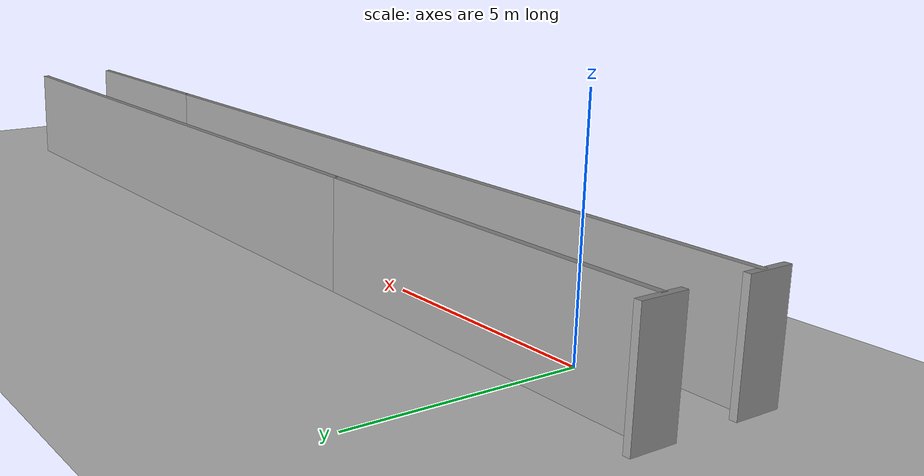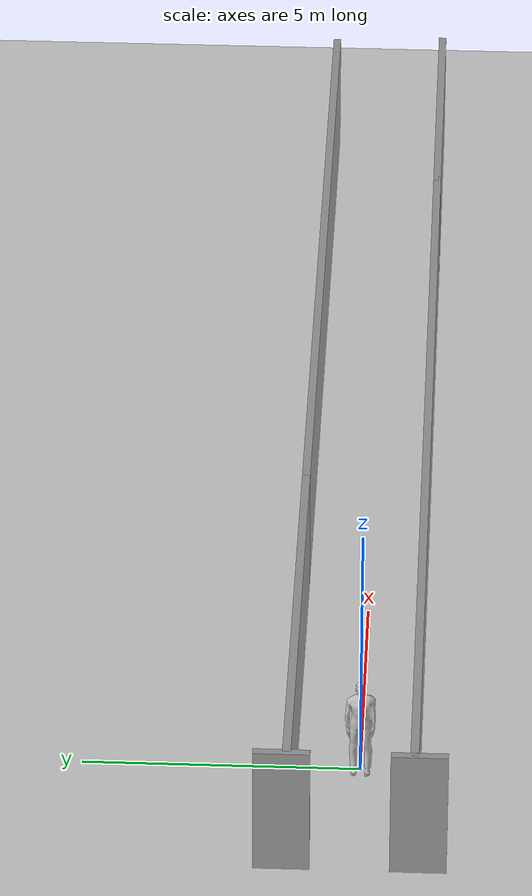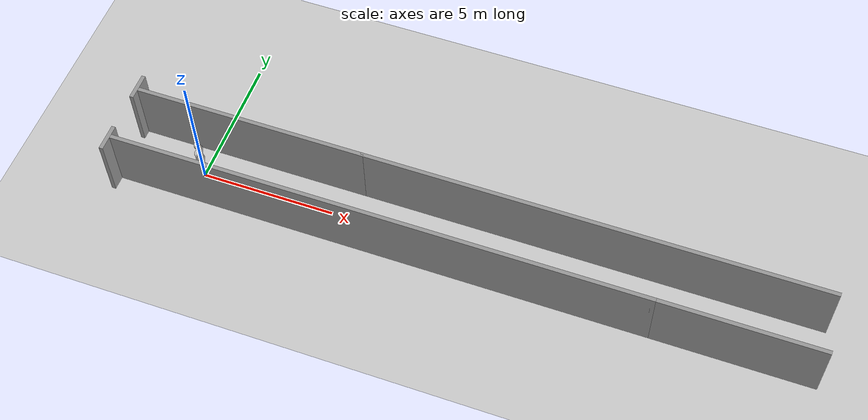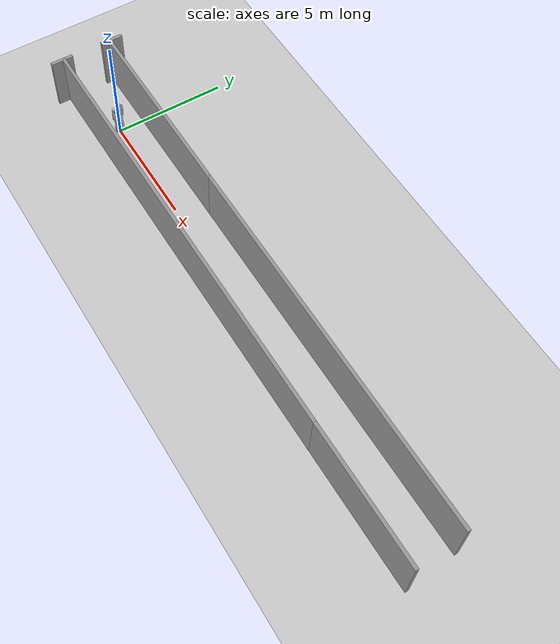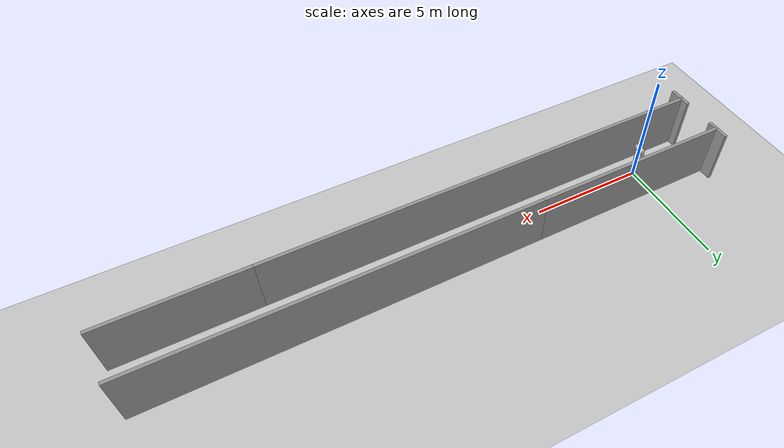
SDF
<sdf version="1.6">
 <world name="default">
  <include>
   <uri>/home/leziart/building_editor_models/Long_corridor</uri>
   <name>long_corridor</name>
   <pose>10 0.1 -0.05 0 0 0</pose>
  </include>
  <model name="moving_person_1">
   <static>true</static>
   <pose>0 0 0.02 0 0 -1.5708</pose>
   <link name="link_p1">
    <collision name="collision">
     <geometry><mesh><uri>model://person_standing/meshes/standing.dae</uri></mesh></geometry>
    </collision>
    <visual name="visual">
     <geometry><mesh><uri>model://person_standing/meshes/standing.dae</uri></mesh></geometry>
    </visual>
   </link>
   <plugin name="sample_1" filename="/home/leziart/catkin_ws/src/chapulina-gazebo_plugins-dd9c7d7e7291/SetStaticPose/build/libSetStaticPose.so">
    <id_person>1</id_person>
    <pos_init_x>20.0</pos_init_x>
    <pos_init_y>0.78</pos_init_y>
    <pos_final_x>0.0</pos_final_x>
    <pos_final_y>0.78</pos_final_y>
    <time_back_forth>60</time_back_forth>
   </plugin>
  </model>
  <model name="moving_person_2">
   <static>true</static>
   <pose>0 0 0.02 0 0 -1.5708</pose>
   <link name="link_p2">
    <collision name="collision">
     <geometry><mesh><uri>model://person_standing/meshes/standing.dae</uri></mesh></geometry>
    </collision>
    <visual name="visual">
     <geometry><mesh><uri>model://person_standing/meshes/standing.dae</uri></mesh></geometry>
    </visual>
   </link>
   <plugin name="sample_2" filename="/home/leziart/catkin_ws/src/chapulina-gazebo_plugins-dd9c7d7e7291/SetStaticPose/build/libSetStaticPose.so">
    <id_person>2</id_person>
    <pos_init_x>25</pos_init_x>
    <pos_init_y>-0.5</pos_init_y>
    <pos_final_x>0.0</pos_final_x>
    <pos_final_y>-0.5</pos_final_y>
    <time_back_forth>75.0</time_back_forth>
   </plugin>
  </model>
  <model name="moving_person_3">
   <static>true</static>
   <pose>0 0 0.02 0 0 -1.5708</pose>
   <link name="link_p3">
    <collision name="collision">
     <geometry><mesh><uri>model://person_standing/meshes/standing.dae</uri></mesh></geometry>
    </collision>
    <visual name="visual">
     <geometry><mesh><uri>model://person_standing/meshes/standing.dae</uri></mesh></geometry>
    </visual>
   </link>
   <plugin name="sample_3" filename="/home/leziart/catkin_ws/src/chapulina-gazebo_plugins-dd9c7d7e7291/SetStaticPose/build/libSetStaticPose.so">
    <id_person>3</id_person>
    <pos_init_x>30</pos_init_x>
    <pos_init_y>0.78</pos_init_y>
    <pos_final_x>0.0</pos_final_x>
    <pos_final_y>0.78</pos_final_y>
    <time_back_forth>90.0</time_back_forth>
   </plugin>
  </model>
  <light name="sun" type="directional">
   <pose>5 5 10 0 -0 0</pose>
   <diffuse>0.8 0.8 0.8 1</diffuse>
   <specular>0.1 0.1 0.1 1</specular>
   <attenuation>
    <range>1000</range>
    <constant>0.9</constant>
    <linear>0.01</linear>
    <quadratic>0.001</quadratic>
   </attenuation>
   <direction>-0.2 0.2 -1</direction>
  </light>
  <model name="ground_plane">
   <static>1</static>
   <link name="link">
    <collision name="collision">
     <geometry><plane><normal>0 0 1</normal><size>500 500</size></plane></geometry>
     <surface><friction><ode><mu>100</mu><mu2>50</mu2></ode></friction></surface>
    </collision>
    <visual name="visual">
     <cast_shadows>0</cast_shadows>
     <geometry><plane><normal>0 0 1</normal><size>100 100</size></plane></geometry>
     <material>
      <script><uri>file://media/materials/scripts/gazebo.material</uri><name>Gazebo/Grey</name></script>
     </material>
    </visual>
   </link>
  </model>
  <gravity>0 0 -9.8</gravity>
  <magnetic_field>6e-06 2.3e-05 -4.2e-05</magnetic_field>
  <atmosphere type="adiabatic"/>
  <physics name="default_physics" default="0" type="ode">
   <max_step_size>0.001</max_step_size>
   <real_time_factor>1</real_time_factor>
   <real_time_update_rate>1000</real_time_update_rate>
  </physics>
  <scene><ambient>0.4 0.4 0.4 1</ambient><background>0.7 0.7 0.7 1</background><shadows>1</shadows></scene>
  <spherical_coordinates>
   <surface_model>EARTH_WGS84</surface_model>
   <latitude_deg>0</latitude_deg>
   <longitude_deg>0</longitude_deg>
   <elevation>0</elevation>
   <heading_deg>0</heading_deg>
  </spherical_coordinates>
 </world>
</sdf>

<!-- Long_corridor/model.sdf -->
<sdf version='1.6'>
  <model name='Long_corridor'>
    <pose frame=''>3.97681 0.085743 0 0 -0 0</pose>
    <link name='Wall_11'>
      <collision name='Wall_11_Collision'>
        <geometry>
          <box>
            <size>17 0.15 2.5</size>
          </box>
        </geometry>
        <pose frame=''>0 0 1.25 0 -0 0</pose>
      </collision>
      <visual name='Wall_11_Visual'>
        <pose frame=''>0 0 1.25 0 -0 0</pose>
        <geometry>
          <box>
            <size>17 0.15 2.5</size>
          </box>
        </geometry>
        <material>
          <script>
            <uri>file://media/materials/scripts/gazebo.material</uri>
            <name>Gazebo/Grey</name>
          </script>
          <ambient>1 1 1 1</ambient>
        </material>
      </visual>
      <pose frame=''>4.25799 1.11034 0 0 -0 0</pose>
    </link>
    <link name='Wall_15'>
      <collision name='Wall_15_Collision'>
        <geometry>
          <box>
            <size>6 0.15 2.5</size>
          </box>
        </geometry>
        <pose frame=''>0 0 1.25 0 -0 0</pose>
      </collision>
      <visual name='Wall_15_Visual'>
        <pose frame=''>0 0 1.25 0 -0 0</pose>
        <geometry>
          <box>
            <size>6 0.15 2.5</size>
          </box>
        </geometry>
        <material>
          <script>
            <uri>file://media/materials/scripts/gazebo.material</uri>
            <name>Gazebo/Grey</name>
          </script>
          <ambient>1 1 1 1</ambient>
        </material>
      </visual>
      <pose frame=''>9.925 -1.11034 0 0 -0 0</pose>
    </link>
    <link name='Wall_5'>
      <collision name='Wall_5_Collision'>
        <geometry>
          <box>
            <size>8.75528 0.15 2.5</size>
          </box>
        </geometry>
        <pose frame=''>0 0 1.25 0 -0 0</pose>
      </collision>
      <visual name='Wall_5_Visual'>
        <pose frame=''>0 0 1.25 0 -0 0</pose>
        <geometry>
          <box>
            <size>8.75528 0.15 2.5</size>
          </box>
        </geometry>
        <material>
          <script>
            <uri>file://media/materials/scripts/gazebo.material</uri>
            <name>Gazebo/Grey</name>
          </script>
          <ambient>1 1 1 1</ambient>
        </material>
      </visual>
      <pose frame=''>-8.50024 1.11034 0 0 -0 3.14159</pose>
    </link>
    <link name='Wall_9'>
      <collision name='Wall_9_Collision'>
        <geometry>
          <box>
            <size>20 0.15 2.5</size>
          </box>
        </geometry>
        <pose frame=''>0 0 1.25 0 -0 0</pose>
      </collision>
      <visual name='Wall_9_Visual'>
        <pose frame=''>0 0 1.25 0 -0 0</pose>
        <geometry>
          <box>
            <size>20 0.15 2.5</size>
          </box>
        </geometry>
        <material>
          <script>
            <uri>file://media/materials/scripts/gazebo.material</uri>
            <name>Gazebo/Grey</name>
          </script>
          <ambient>1 1 1 1</ambient>
        </material>
      </visual>
      <pose frame=''>-2.925 -1.11034 0 0 -0 0</pose>
    </link>
    <link name='Wall_42'>
      <collision name='Wall_42_Collision'>
        <geometry>
          <box>
            <size>1 0.15 2.5</size>
          </box>
        </geometry>
        <pose frame=''>0 0 1.25 0 -0 0</pose>
      </collision>
      <visual name='Wall_42_Visual'>
        <pose frame=''>0 0 1.25 0 -0 0</pose>
        <geometry>
          <box>
            <size>1 0.15 2.5</size>
          </box>
        </geometry>
        <material>
          <script>
            <uri>file://media/materials/scripts/gazebo.material</uri>
            <name>Gazebo/Grey</name>
          </script>
          <ambient>1 1 1 1</ambient>
        </material>
      </visual>
      <pose frame=''>-12.9 -1.2 0 0 -0 1.5708</pose>
    </link>
    <link name='Wall_43'>
      <collision name='Wall_43_Collision'>
        <geometry>
          <box>
            <size>1 0.15 2.5</size>
          </box>
        </geometry>
        <pose frame=''>0 0 1.25 0 -0 0</pose>
      </collision>
      <visual name='Wall_43_Visual'>
        <pose frame=''>0 0 1.25 0 -0 0</pose>
        <geometry>
          <box>
            <size>1 0.15 2.5</size>
          </box>
        </geometry>
        <material>
          <script>
            <uri>file://media/materials/scripts/gazebo.material</uri>
            <name>Gazebo/Grey</name>
          </script>
          <ambient>1 1 1 1</ambient>
        </material>
      </visual>
      <pose frame=''>-12.9 1.2 0 0 -0 1.5708</pose>
    </link>
    <static>1</static>
  </model>
</sdf>
